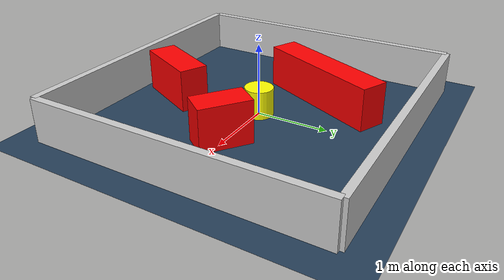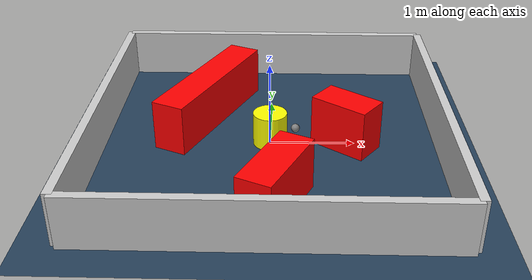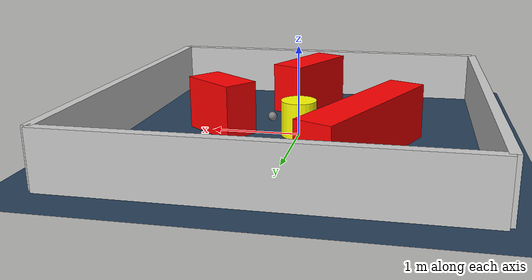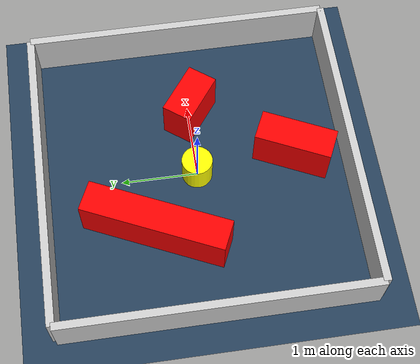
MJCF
<?xml version="1.0" ?>
<mujoco model="generated_environment">
  <option timestep="0.01" integrator="RK4" cone="elliptic"/>
  <default>
    <geom density="1"/>
  </default>
  <asset>
    <texture builtin="gradient" height="3072" rgb1="0.3 0.5 0.7" rgb2="0 0 0" type="skybox" width="512"/>
    <texture builtin="checker" height="300" mark="edge" markrgb="0.8 0.8 0.8" name="groundplane" rgb1="0.2 0.3 0.4" rgb2="0.1 0.2 0.3" type="2d" width="300"/>
    <material name="groundplane" reflectance="0.2" texrepeat="5 5" texture="groundplane" texuniform="true"/>
    <material name="robot" rgba="0.0 1.0 0.0 1"/>
  </asset>
  <worldbody>
    <light dir="0 0 -1" directional="true" pos="0 0 1.5"/>
    <geom condim="4" friction="1.0 0.005 0.001" material="groundplane" name="floor" size="0 0 0.05" type="plane"/>
    <body name="walls">
      <geom name="wall_1" condim="4" pos="-2.0 0.0 0.3" rgba="0.800000011920929 0.800000011920929 0.800000011920929 1.0" size="0.05 2.0 0.3" type="box"/>
      <geom name="wall_2" condim="4" pos="2.0 0.0 0.3" rgba="0.800000011920929 0.800000011920929 0.800000011920929 1.0" size="0.05 2.0 0.3" type="box"/>
      <geom name="wall_3" condim="4" pos="0.0 -2.0 0.3" rgba="0.800000011920929 0.800000011920929 0.800000011920929 1.0" size="2.0 0.05 0.3" type="box"/>
      <geom name="wall_4" condim="4" pos="0.0 2.0 0.3" rgba="0.800000011920929 0.800000011920929 0.800000011920929 1.0" size="2.0 0.05 0.3" type="box"/>
    </body>
    <body name="robot">
      <joint name="joint_x" type="slide" pos="0 0 0" axis="1 0 0"/>
      <joint name="joint_y" type="slide" pos="0 0 0" axis="0 1 0"/>
      <geom name="robot" type="sphere" pos="0.3 0.0 0.2" size="0.05" mass="5." friction="1.0 0.005 0.0001" condim="4" rgba="0.5 0.5 0.5 1.0"/>
      <site name="sensor_ball"/>
    </body>
    <body name="obstacle_movable_1">
      <geom name="obstacle_movable_1" condim="4" pos="0.0 0.0 0.2" euler="0 0 0.0" friction="1.0 0.005 0.001" rgba="1.0 1.0 0.0 1.0" size="0.2 0.2 0.0" type="cylinder" mass="0.1"/>
      <joint type="free"/>
    </body>
    <body name="obstacle_2_static">
      <geom name="obstacle_2_static" condim="4" pos="0.890619211319496 -0.024549902427538406 0.3" euler="0 0 143.15590721127273" friction="1.0 0.005 0.001" rgba="1 0 0 1" size="0.3559608896052453 0.2 0.3" type="box"/>
    </body>
    <body name="obstacle_3_static">
      <geom name="obstacle_3_static" condim="4" pos="0.09224765659656864 -1.3022321735913343 0.3" euler="0 0 244.60868631781187" friction="1.0 0.005 0.001" rgba="1 0 0 1" size="0.5010877950408514 0.2 0.3" type="box"/>
    </body>
    <body name="obstacle_4_static">
      <geom name="obstacle_4_static" condim="4" pos="-0.7756921200015541 0.6218756156244318 0.3" euler="0 0 245.3119549546706" friction="1.0 0.005 0.001" rgba="1 0 0 1" size="0.9426354670151924 0.2 0.3" type="box"/>
    </body>
  </worldbody>
  <actuator>
    <motor name="actuator_x" joint="joint_x" gear="1" ctrlrange="-1 1"/>
    <motor name="actuator_y" joint="joint_y" gear="1" ctrlrange="-1 1"/>
  </actuator>
</mujoco>
